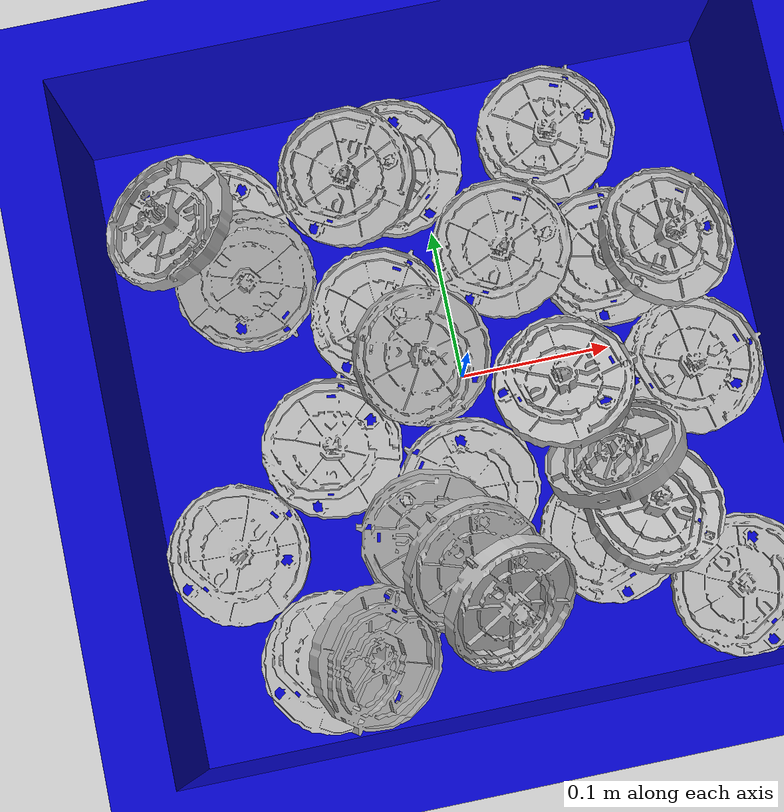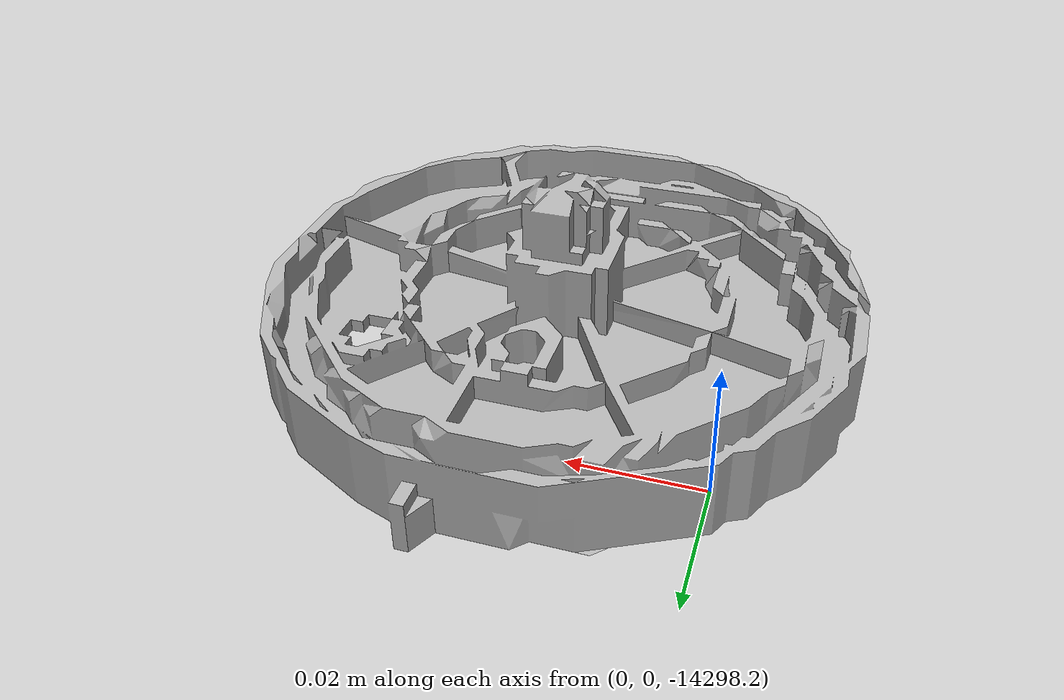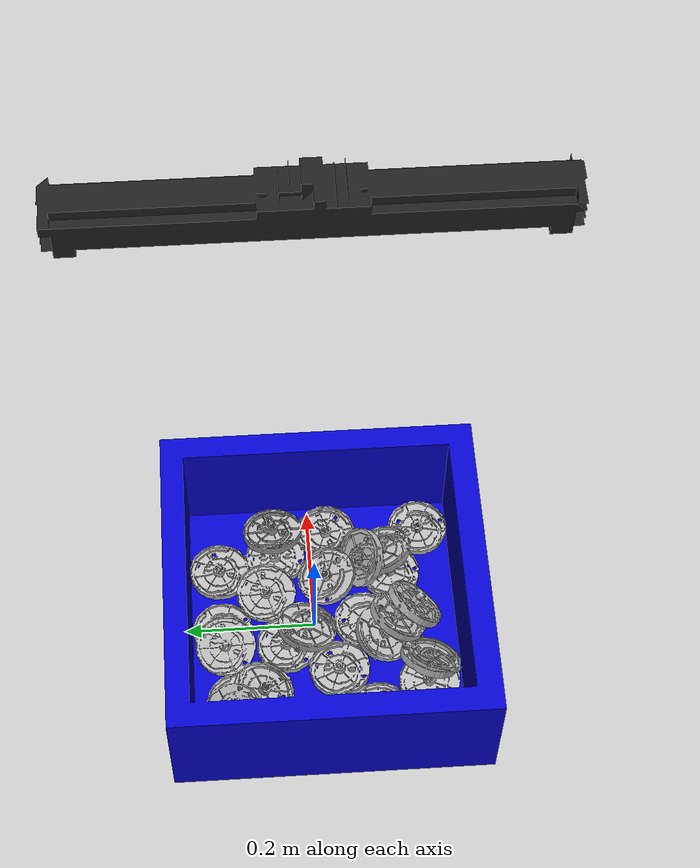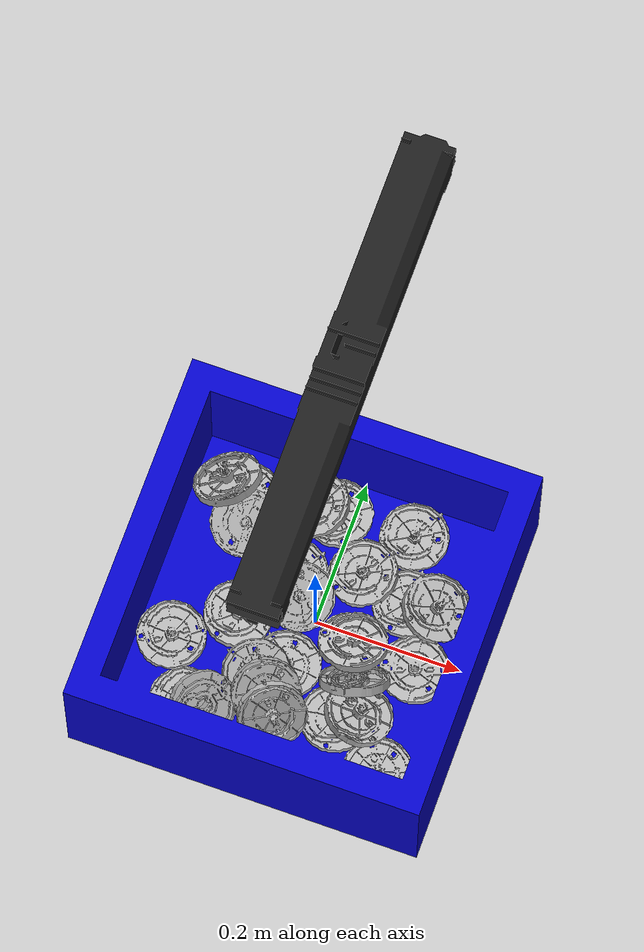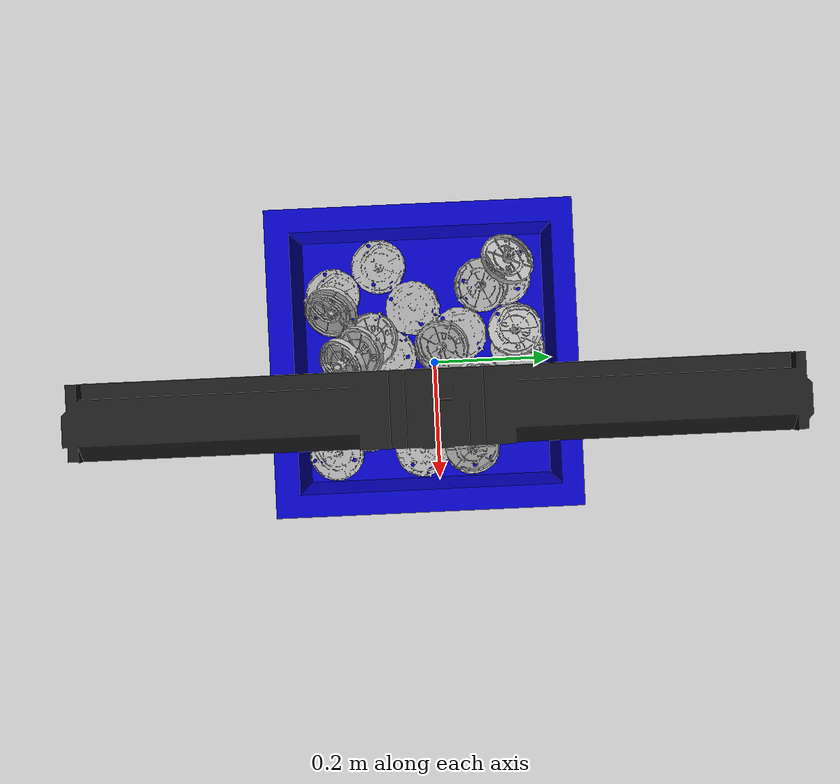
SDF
<sdf version="1.7">
 <world name="default">
  <light name="sun" type="directional">
   <pose>0 0 10 0 -0 0</pose>
   <diffuse>0.8 0.8 0.8 1</diffuse>
   <specular>0.2 0.2 0.2 1</specular>
   <attenuation>
    <range>1000</range>
    <constant>0.9</constant>
    <linear>0.01</linear>
    <quadratic>0.001</quadratic>
   </attenuation>
   <direction>-0.5 0.1 -0.9</direction>
   <spot><inner_angle>0</inner_angle><outer_angle>0</outer_angle><falloff>0</falloff></spot>
  </light>
  <model name="ground_plane">
   <static>1</static>
   <link name="link">
    <collision name="collision">
     <geometry><plane><normal>0 0 1</normal><size>100 100</size></plane></geometry>
     <surface><friction><ode><mu>100</mu><mu2>50</mu2></ode></friction></surface>
    </collision>
    <visual name="visual">
     <cast_shadows>0</cast_shadows>
     <geometry><plane><normal>0 0 1</normal><size>100 100</size></plane></geometry>
     <material>
      <script><uri>file://media/materials/scripts/gazebo.material</uri><name>Gazebo/Grey</name></script>
     </material>
    </visual>
   </link>
  </model>
  <gravity>0 0 -9.8</gravity>
  <magnetic_field>6e-06 2.3e-05 -4.2e-05</magnetic_field>
  <atmosphere type="adiabatic"/>
  <physics type="ode">
   <max_step_size>0.001</max_step_size>
   <real_time_factor>1</real_time_factor>
   <real_time_update_rate>1000</real_time_update_rate>
  </physics>
  <scene><ambient>0.4 0.4 0.4 1</ambient><background>0.7 0.7 0.7 1</background><shadows>1</shadows></scene>
  <spherical_coordinates>
   <surface_model>EARTH_WGS84</surface_model>
   <latitude_deg>0</latitude_deg>
   <longitude_deg>0</longitude_deg>
   <elevation>0</elevation>
   <heading_deg>0</heading_deg>
  </spherical_coordinates>
  <model name="phoxi_camera">
   <joint name="photoneo_center_joint" type="fixed">
    <pose relative_to="__model__">0 0 1 3.14159 1.57079 3.14159</pose>
    <parent>world</parent>
    <child>photoneo_center</child>
   </joint>
   <link name="photoneo_center">
    <pose relative_to="photoneo_center_joint">0 0 0 0 -0 0</pose>
    <inertial>
     <mass>1.1</mass>
     <inertia><ixx>1</ixx><ixy>0</ixy><ixz>0</ixz><iyy>1</iyy><iyz>0</iyz><izz>1</izz></inertia>
    </inertial>
    <collision name="photoneo_center_collision">
     <pose>0 0 0 1.5708 -0 -3.14159</pose>
     <geometry>
      <mesh>
       <scale>0.001 0.001 0.001</scale>
       <uri>/home/ericlab/ros_package/denso_ws/src/denso_run/denso_pkgs/denso_common/denso_descriptions/phoxi_camera_description/meshes/collision/PhoXi_L.c.STL</uri>
      </mesh>
     </geometry>
     <surface><friction><ode><mu>0.2</mu><mu2>0.2</mu2></ode></friction></surface>
    </collision>
    <visual name="photoneo_center_visual">
     <pose>0 0 0 1.5708 -0 -3.14159</pose>
     <geometry>
      <mesh>
       <scale>0.001 0.001 0.001</scale>
       <uri>/home/ericlab/ros_package/denso_ws/src/denso_run/denso_pkgs/denso_common/denso_descriptions/phoxi_camera_description/meshes/visual/PhoXi_L.f.STL</uri>
      </mesh>
     </geometry>
     <material>
      <script><name>Gazebo/Black</name><uri>file://media/materials/scripts/gazebo.material</uri></script>
     </material>
    </visual>
    <sensor name="photoneo_center_sensor" type="depth">
     <always_on>1</always_on>
     <update_rate>30</update_rate>
     <camera>
      <horizontal_fov>1.46782</horizontal_fov>
      <image><format>L8</format><width>2064</width><height>1544</height></image>
      <clip><near>0.05</near><far>4.5</far></clip>
      <noise><type>gaussian</type><mean>0</mean><stddev>0.005</stddev></noise>
     </camera>
     <plugin name="photoneo_center_sensor_controller" filename="libgazebo_ros_openni_kinect.so">
      <cameraName>photoneo_center/sensor</cameraName>
      <alwaysOn>1</alwaysOn>
      <updateRate>30</updateRate>
      <imageTopicName>image_color</imageTopicName>
      <depthImageTopicName>image_depth</depthImageTopicName>
      <pointCloudTopicName>points</pointCloudTopicName>
      <cameraInfoTopicName>camera_info</cameraInfoTopicName>
      <depthImageCameraInfoTopicName>camera_info</depthImageCameraInfoTopicName>
      <frameName>photoneo_center_optical_frame</frameName>
      <baseline>0.1</baseline>
      <distortion_k1>-0.11862627596824302</distortion_k1>
      <distortion_k2>0.1330449495758574</distortion_k2>
      <distortion_k3>0.0</distortion_k3>
      <distortion_t1>0.0012978747886444077</distortion_t1>
      <distortion_t2>-0.002273816413316873</distortion_t2>
      <focalLength>2293.3324879074394</focalLength>
      <hackBaseline>0.0</hackBaseline>
      <Cx>1041.4935095434566</Cx>
      <Cy>857.6330096952366</Cy>
      <pointCloudCutoff>0.05</pointCloudCutoff>
      <pointCloudCutoffMax>4.5</pointCloudCutoffMax>
      <robotNamespace>/</robotNamespace>
     </plugin>
    </sensor>
    <sensor name="photoneo_center_camera" type="camera">
     <always_on>1</always_on>
     <update_rate>30</update_rate>
     <camera>
      <pose>0.035 -0.275 0.0168 0 -0 0.164934</pose>
      <horizontal_fov>1.46782</horizontal_fov>
      <image><format>L8</format><width>752</width><height>480</height></image>
      <clip><near>0.05</near><far>4.5</far></clip>
      <noise><type>gaussian</type><mean>0</mean><stddev>0.005</stddev></noise>
     </camera>
     <plugin name="photoneo_center_camera_controller" filename="libgazebo_ros_camera.so">
      <cameraName>photoneo_center/camera</cameraName>
      <alwaysOn>1</alwaysOn>
      <updateRate>30</updateRate>
      <imageTopicName>image_color</imageTopicName>
      <cameraInfoTopicName>camera_info</cameraInfoTopicName>
      <frameName>photoneo_center_camera_frame</frameName>
      <baseline>0.1</baseline>
      <distortion_k1>-0.11862627596824302</distortion_k1>
      <distortion_k2>0.1330449495758574</distortion_k2>
      <distortion_k3>0.0</distortion_k3>
      <distortion_t1>0.0012978747886444077</distortion_t1>
      <distortion_t2>-0.002273816413316873</distortion_t2>
      <focalLength>2293.3324879074394</focalLength>
      <hackBaseline>0.07</hackBaseline>
      <Cx>1041.4935095434566</Cx>
      <Cy>857.6330096952366</Cy>
      <pointCloudCutoff>0.05</pointCloudCutoff>
      <pointCloudCutoffMax>4.5</pointCloudCutoffMax>
      <robotNamespace>/</robotNamespace>
     </plugin>
    </sensor>
   </link>
  </model>
  <model name="object_box">
   <pose>-0.009292 -0.016374 0 0 -0 0</pose>
   <static>1</static>
   <link name="object_box">
    <inertial>
     <mass>0.2</mass>
     <inertia><ixx>0.0005</ixx><ixy>0</ixy><ixz>0</ixz><iyy>0.0005</iyy><iyz>0</iyz><izz>0.0005</izz></inertia>
    </inertial>
    <collision name="collision">
     <geometry><mesh><uri>model://object_box/meshed/object_box_kai.dae</uri></mesh></geometry>
    </collision>
    <visual name="visual">
     <geometry><mesh><uri>model://object_box/meshed/object_box_kai.dae</uri></mesh></geometry>
    </visual>
   </link>
  </model>
  <model name="HV8">
   <pose>0.028188 -0.028155 -14298.2 0 -0 0</pose>
   <static>0</static>
   <link name="HV8">
    <inertial>
     <mass>0.2</mass>
     <inertia><ixx>0.0005</ixx><ixy>0</ixy><ixz>0</ixz><iyy>0.0005</iyy><iyz>0</iyz><izz>0.0005</izz></inertia>
    </inertial>
    <collision name="collishin">
     <geometry><mesh><uri>model://HV8/meshes/HV8_1.stl</uri></mesh></geometry>
    </collision>
    <visual name="visual"><geometry><mesh><uri>model://HV8/meshes/HV8_1.stl</uri></mesh></geometry></visual>
   </link>
  </model>
  <model name="HV8_0">
   <pose>0.107011 0.054985 0.024992 0.001295 -0.000476 0.039551</pose>
   <static>0</static>
   <link name="HV8">
    <inertial>
     <mass>0.2</mass>
     <inertia><ixx>0.0005</ixx><ixy>0</ixy><ixz>0</ixz><iyy>0.0005</iyy><iyz>0</iyz><izz>0.0005</izz></inertia>
    </inertial>
    <collision name="collishin">
     <geometry><mesh><uri>model://HV8/meshes/HV8_1.stl</uri></mesh></geometry>
    </collision>
    <visual name="visual"><geometry><mesh><uri>model://HV8/meshes/HV8_1.stl</uri></mesh></geometry></visual>
   </link>
  </model>
  <model name="HV8_1">
   <pose>0.14502 0.057654 0.038839 -0.18615 0.247985 -0.535595</pose>
   <static>0</static>
   <link name="HV8">
    <inertial>
     <mass>0.2</mass>
     <inertia><ixx>0.0005</ixx><ixy>0</ixy><ixz>0</ixz><iyy>0.0005</iyy><iyz>0</iyz><izz>0.0005</izz></inertia>
    </inertial>
    <collision name="collishin">
     <geometry><mesh><uri>model://HV8/meshes/HV8_1.stl</uri></mesh></geometry>
    </collision>
    <visual name="visual"><geometry><mesh><uri>model://HV8/meshes/HV8_1.stl</uri></mesh></geometry></visual>
   </link>
  </model>
  <model name="HV8_2">
   <pose>0.146963 -0.026795 0.024991 0.000389 -0.000146 -1.21378</pose>
   <static>0</static>
   <link name="HV8">
    <inertial>
     <mass>0.2</mass>
     <inertia><ixx>0.0005</ixx><ixy>0</ixy><ixz>0</ixz><iyy>0.0005</iyy><iyz>0</iyz><izz>0.0005</izz></inertia>
    </inertial>
    <collision name="collishin">
     <geometry><mesh><uri>model://HV8/meshes/HV8_1.stl</uri></mesh></geometry>
    </collision>
    <visual name="visual"><geometry><mesh><uri>model://HV8/meshes/HV8_1.stl</uri></mesh></geometry></visual>
   </link>
  </model>
  <model name="HV8_3">
   <pose>0.09832 -0.113915 0.043039 0.095296 0.383106 1.11703</pose>
   <static>0</static>
   <link name="HV8">
    <inertial>
     <mass>0.2</mass>
     <inertia><ixx>0.0005</ixx><ixy>0</ixy><ixz>0</ixz><iyy>0.0005</iyy><iyz>0</iyz><izz>0.0005</izz></inertia>
    </inertial>
    <collision name="collishin">
     <geometry><mesh><uri>model://HV8/meshes/HV8_1.stl</uri></mesh></geometry>
    </collision>
    <visual name="visual"><geometry><mesh><uri>model://HV8/meshes/HV8_1.stl</uri></mesh></geometry></visual>
   </link>
  </model>
  <model name="HV8_4">
   <pose>0.147144 -0.173159 0.025038 0.000618 -0.000477 0.560296</pose>
   <static>0</static>
   <link name="HV8">
    <inertial>
     <mass>0.2</mass>
     <inertia><ixx>0.0005</ixx><ixy>0</ixy><ixz>0</ixz><iyy>0.0005</iyy><iyz>0</iyz><izz>0.0005</izz></inertia>
    </inertial>
    <collision name="collishin">
     <geometry><mesh><uri>model://HV8/meshes/HV8_1.stl</uri></mesh></geometry>
    </collision>
    <visual name="visual"><geometry><mesh><uri>model://HV8/meshes/HV8_1.stl</uri></mesh></geometry></visual>
   </link>
  </model>
  <model name="HV8_5">
   <pose>0.085927 0.143874 0.025022 0.000403 -0.000184 -0.35551</pose>
   <static>0</static>
   <link name="HV8">
    <inertial>
     <mass>0.2</mass>
     <inertia><ixx>0.0005</ixx><ixy>0</ixy><ixz>0</ixz><iyy>0.0005</iyy><iyz>0</iyz><izz>0.0005</izz></inertia>
    </inertial>
    <collision name="collishin">
     <geometry><mesh><uri>model://HV8/meshes/HV8_1.stl</uri></mesh></geometry>
    </collision>
    <visual name="visual"><geometry><mesh><uri>model://HV8/meshes/HV8_1.stl</uri></mesh></geometry></visual>
   </link>
  </model>
  <model name="HV8_6">
   <pose>0.041257 0.072857 0.033012 0.109042 -0.139672 -0.495492</pose>
   <static>0</static>
   <link name="HV8">
    <inertial>
     <mass>0.2</mass>
     <inertia><ixx>0.0005</ixx><ixy>0</ixy><ixz>0</ixz><iyy>0.0005</iyy><iyz>0</iyz><izz>0.0005</izz></inertia>
    </inertial>
    <collision name="collishin">
     <geometry><mesh><uri>model://HV8/meshes/HV8_1.stl</uri></mesh></geometry>
    </collision>
    <visual name="visual"><geometry><mesh><uri>model://HV8/meshes/HV8_1.stl</uri></mesh></geometry></visual>
   </link>
  </model>
  <model name="HV8_7">
   <pose>0.07915 -0.07132 0.067285 2.29656 -0.328362 0.053508</pose>
   <static>0</static>
   <link name="HV8">
    <inertial>
     <mass>0.2</mass>
     <inertia><ixx>0.0005</ixx><ixy>0</ixy><ixz>0</ixz><iyy>0.0005</iyy><iyz>0</iyz><izz>0.0005</izz></inertia>
    </inertial>
    <collision name="collishin">
     <geometry><mesh><uri>model://HV8/meshes/HV8_1.stl</uri></mesh></geometry>
    </collision>
    <visual name="visual"><geometry><mesh><uri>model://HV8/meshes/HV8_1.stl</uri></mesh></geometry></visual>
   </link>
  </model>
  <model name="HV8_8">
   <pose>0.071124 -0.123204 0.024997 0.0003 9.4e-05 0.328805</pose>
   <static>0</static>
   <link name="HV8">
    <inertial>
     <mass>0.2</mass>
     <inertia><ixx>0.0005</ixx><ixy>0</ixy><ixz>0</ixz><iyy>0.0005</iyy><iyz>0</iyz><izz>0.0005</izz></inertia>
    </inertial>
    <collision name="collishin">
     <geometry><mesh><uri>model://HV8/meshes/HV8_1.stl</uri></mesh></geometry>
    </collision>
    <visual name="visual"><geometry><mesh><uri>model://HV8/meshes/HV8_1.stl</uri></mesh></geometry></visual>
   </link>
  </model>
  <model name="HV8_9">
   <pose>-0.006318 -0.151735 0.057056 0.776217 -0.108539 0.694929</pose>
   <static>0</static>
   <link name="HV8">
    <inertial>
     <mass>0.2</mass>
     <inertia><ixx>0.0005</ixx><ixy>0</ixy><ixz>0</ixz><iyy>0.0005</iyy><iyz>0</iyz><izz>0.0005</izz></inertia>
    </inertial>
    <collision name="collishin">
     <geometry><mesh><uri>model://HV8/meshes/HV8_1.stl</uri></mesh></geometry>
    </collision>
    <visual name="visual"><geometry><mesh><uri>model://HV8/meshes/HV8_1.stl</uri></mesh></geometry></visual>
   </link>
  </model>
  <model name="HV8_10">
   <pose>-0.018582 0.141965 0.024998 0.00012 -0.000351 0.750207</pose>
   <static>0</static>
   <link name="HV8">
    <inertial>
     <mass>0.2</mass>
     <inertia><ixx>0.0005</ixx><ixy>0</ixy><ixz>0</ixz><iyy>0.0005</iyy><iyz>0</iyz><izz>0.0005</izz></inertia>
    </inertial>
    <collision name="collishin">
     <geometry><mesh><uri>model://HV8/meshes/HV8_1.stl</uri></mesh></geometry>
    </collision>
    <visual name="visual"><geometry><mesh><uri>model://HV8/meshes/HV8_1.stl</uri></mesh></geometry></visual>
   </link>
  </model>
  <model name="HV8_11">
   <pose>-0.046678 0.045215 0.024995 0.000156 -0.000109 -0.507171</pose>
   <static>0</static>
   <link name="HV8">
    <inertial>
     <mass>0.2</mass>
     <inertia><ixx>0.0005</ixx><ixy>0</ixy><ixz>0</ixz><iyy>0.0005</iyy><iyz>0</iyz><izz>0.0005</izz></inertia>
    </inertial>
    <collision name="collishin">
     <geometry><mesh><uri>model://HV8/meshes/HV8_1.stl</uri></mesh></geometry>
    </collision>
    <visual name="visual"><geometry><mesh><uri>model://HV8/meshes/HV8_1.stl</uri></mesh></geometry></visual>
   </link>
  </model>
  <model name="HV8_12">
   <pose>0.060883 -0.024837 0.04111 0.011727 -0.361921 -1.32976</pose>
   <static>0</static>
   <link name="HV8">
    <inertial>
     <mass>0.2</mass>
     <inertia><ixx>0.0005</ixx><ixy>0</ixy><ixz>0</ixz><iyy>0.0005</iyy><iyz>0</iyz><izz>0.0005</izz></inertia>
    </inertial>
    <collision name="collishin">
     <geometry><mesh><uri>model://HV8/meshes/HV8_1.stl</uri></mesh></geometry>
    </collision>
    <visual name="visual"><geometry><mesh><uri>model://HV8/meshes/HV8_1.stl</uri></mesh></geometry></visual>
   </link>
  </model>
  <model name="HV8_13">
   <pose>-0.012768 -0.076543 0.024997 0.000557 -0.000342 0.948909</pose>
   <static>0</static>
   <link name="HV8">
    <inertial>
     <mass>0.2</mass>
     <inertia><ixx>0.0005</ixx><ixy>0</ixy><ixz>0</ixz><iyy>0.0005</iyy><iyz>0</iyz><izz>0.0005</izz></inertia>
    </inertial>
    <collision name="collishin">
     <geometry><mesh><uri>model://HV8/meshes/HV8_1.stl</uri></mesh></geometry>
    </collision>
    <visual name="visual"><geometry><mesh><uri>model://HV8/meshes/HV8_1.stl</uri></mesh></geometry></visual>
   </link>
  </model>
  <model name="HV8_14">
   <pose>-0.023444 -0.125505 0.052738 0.572905 -0.0798 0.647375</pose>
   <static>0</static>
   <link name="HV8">
    <inertial>
     <mass>0.2</mass>
     <inertia><ixx>0.0005</ixx><ixy>0</ixy><ixz>0</ixz><iyy>0.0005</iyy><iyz>0</iyz><izz>0.0005</izz></inertia>
    </inertial>
    <collision name="collishin">
     <geometry><mesh><uri>model://HV8/meshes/HV8_1.stl</uri></mesh></geometry>
    </collision>
    <visual name="visual"><geometry><mesh><uri>model://HV8/meshes/HV8_1.stl</uri></mesh></geometry></visual>
   </link>
  </model>
  <model name="HV8_15">
   <pose>-0.049067 0.138902 0.039292 0.133584 -0.19326 -0.508333</pose>
   <static>0</static>
   <link name="HV8">
    <inertial>
     <mass>0.2</mass>
     <inertia><ixx>0.0005</ixx><ixy>0</ixy><ixz>0</ixz><iyy>0.0005</iyy><iyz>0</iyz><izz>0.0005</izz></inertia>
    </inertial>
    <collision name="collishin">
     <geometry><mesh><uri>model://HV8/meshes/HV8_1.stl</uri></mesh></geometry>
    </collision>
    <visual name="visual"><geometry><mesh><uri>model://HV8/meshes/HV8_1.stl</uri></mesh></geometry></visual>
   </link>
  </model>
  <model name="HV8_16">
   <pose>-0.027324 0.013777 0.040256 0.307388 -0.151575 1.26846</pose>
   <static>0</static>
   <link name="HV8">
    <inertial>
     <mass>0.2</mass>
     <inertia><ixx>0.0005</ixx><ixy>0</ixy><ixz>0</ixz><iyy>0.0005</iyy><iyz>0</iyz><izz>0.0005</izz></inertia>
    </inertial>
    <collision name="collishin">
     <geometry><mesh><uri>model://HV8/meshes/HV8_1.stl</uri></mesh></geometry>
    </collision>
    <visual name="visual"><geometry><mesh><uri>model://HV8/meshes/HV8_1.stl</uri></mesh></geometry></visual>
   </link>
  </model>
  <model name="HV8_17">
   <pose>-0.094963 -0.033721 0.028568 -0.061456 0.049066 -0.156722</pose>
   <static>0</static>
   <link name="HV8">
    <inertial>
     <mass>0.2</mass>
     <inertia><ixx>0.0005</ixx><ixy>0</ixy><ixz>0</ixz><iyy>0.0005</iyy><iyz>0</iyz><izz>0.0005</izz></inertia>
    </inertial>
    <collision name="collishin">
     <geometry><mesh><uri>model://HV8/meshes/HV8_1.stl</uri></mesh></geometry>
    </collision>
    <visual name="visual"><geometry><mesh><uri>model://HV8/meshes/HV8_1.stl</uri></mesh></geometry></visual>
   </link>
  </model>
  <model name="HV8_18">
   <pose>-0.043102 -0.103509 0.040949 0.013836 -0.357589 1.33622</pose>
   <static>0</static>
   <link name="HV8">
    <inertial>
     <mass>0.2</mass>
     <inertia><ixx>0.0005</ixx><ixy>0</ixy><ixz>0</ixz><iyy>0.0005</iyy><iyz>0</iyz><izz>0.0005</izz></inertia>
    </inertial>
    <collision name="collishin">
     <geometry><mesh><uri>model://HV8/meshes/HV8_1.stl</uri></mesh></geometry>
    </collision>
    <visual name="visual"><geometry><mesh><uri>model://HV8/meshes/HV8_1.stl</uri></mesh></geometry></visual>
   </link>
  </model>
  <model name="HV8_19">
   <pose>-0.089777 -0.17269 0.059221 3.09545 0.580662 -0.637548</pose>
   <static>0</static>
   <link name="HV8">
    <inertial>
     <mass>0.2</mass>
     <inertia><ixx>0.0005</ixx><ixy>0</ixy><ixz>0</ixz><iyy>0.0005</iyy><iyz>0</iyz><izz>0.0005</izz></inertia>
    </inertial>
    <collision name="collishin">
     <geometry><mesh><uri>model://HV8/meshes/HV8_1.stl</uri></mesh></geometry>
    </collision>
    <visual name="visual"><geometry><mesh><uri>model://HV8/meshes/HV8_1.stl</uri></mesh></geometry></visual>
   </link>
  </model>
  <model name="HV8_20">
   <pose>-0.139227 0.123466 0.024994 0.000311 -0.000303 0.283552</pose>
   <static>0</static>
   <link name="HV8">
    <inertial>
     <mass>0.2</mass>
     <inertia><ixx>0.0005</ixx><ixy>0</ixy><ixz>0</ixz><iyy>0.0005</iyy><iyz>0</iyz><izz>0.0005</izz></inertia>
    </inertial>
    <collision name="collishin">
     <geometry><mesh><uri>model://HV8/meshes/HV8_1.stl</uri></mesh></geometry>
    </collision>
    <visual name="visual"><geometry><mesh><uri>model://HV8/meshes/HV8_1.stl</uri></mesh></geometry></visual>
   </link>
  </model>
  <model name="HV8_21">
   <pose>-0.128019 0.085819 0.038945 -0.266284 0.162282 -2.47911</pose>
   <static>0</static>
   <link name="HV8">
    <inertial>
     <mass>0.2</mass>
     <inertia><ixx>0.0005</ixx><ixy>0</ixy><ixz>0</ixz><iyy>0.0005</iyy><iyz>0</iyz><izz>0.0005</izz></inertia>
    </inertial>
    <collision name="collishin">
     <geometry><mesh><uri>model://HV8/meshes/HV8_1.stl</uri></mesh></geometry>
    </collision>
    <visual name="visual"><geometry><mesh><uri>model://HV8/meshes/HV8_1.stl</uri></mesh></geometry></visual>
   </link>
  </model>
  <model name="HV8_22">
   <pose>-0.166682 0.127768 0.049823 -0.48955 0.319421 1.41428</pose>
   <static>0</static>
   <link name="HV8">
    <inertial>
     <mass>0.2</mass>
     <inertia><ixx>0.0005</ixx><ixy>0</ixy><ixz>0</ixz><iyy>0.0005</iyy><iyz>0</iyz><izz>0.0005</izz></inertia>
    </inertial>
    <collision name="collishin">
     <geometry><mesh><uri>model://HV8/meshes/HV8_1.stl</uri></mesh></geometry>
    </collision>
    <visual name="visual"><geometry><mesh><uri>model://HV8/meshes/HV8_1.stl</uri></mesh></geometry></visual>
   </link>
  </model>
  <model name="HV8_23">
   <pose>-0.167113 -0.088869 0.025011 3.8e-05 -0.000189 -0.899478</pose>
   <static>0</static>
   <link name="HV8">
    <inertial>
     <mass>0.2</mass>
     <inertia><ixx>0.0005</ixx><ixy>0</ixy><ixz>0</ixz><iyy>0.0005</iyy><iyz>0</iyz><izz>0.0005</izz></inertia>
    </inertial>
    <collision name="collishin">
     <geometry><mesh><uri>model://HV8/meshes/HV8_1.stl</uri></mesh></geometry>
    </collision>
    <visual name="visual"><geometry><mesh><uri>model://HV8/meshes/HV8_1.stl</uri></mesh></geometry></visual>
   </link>
  </model>
  <model name="HV8_24">
   <pose>-0.120904 -0.168283 0.024991 0.000668 -0.000218 -0.977854</pose>
   <static>0</static>
   <link name="HV8">
    <inertial>
     <mass>0.2</mass>
     <inertia><ixx>0.0005</ixx><ixy>0</ixy><ixz>0</ixz><iyy>0.0005</iyy><iyz>0</iyz><izz>0.0005</izz></inertia>
    </inertial>
    <collision name="collishin">
     <geometry><mesh><uri>model://HV8/meshes/HV8_1.stl</uri></mesh></geometry>
    </collision>
    <visual name="visual"><geometry><mesh><uri>model://HV8/meshes/HV8_1.stl</uri></mesh></geometry></visual>
   </link>
  </model>
 </world>
</sdf>
